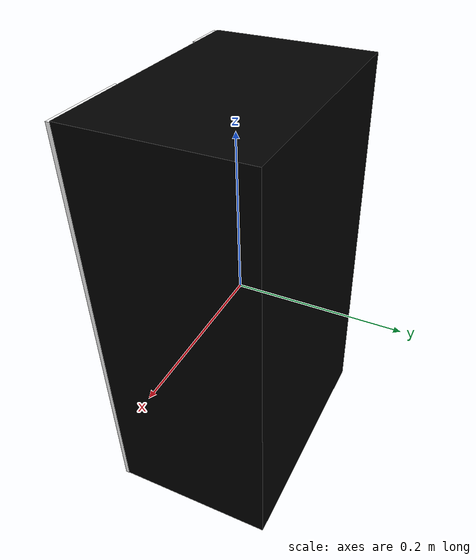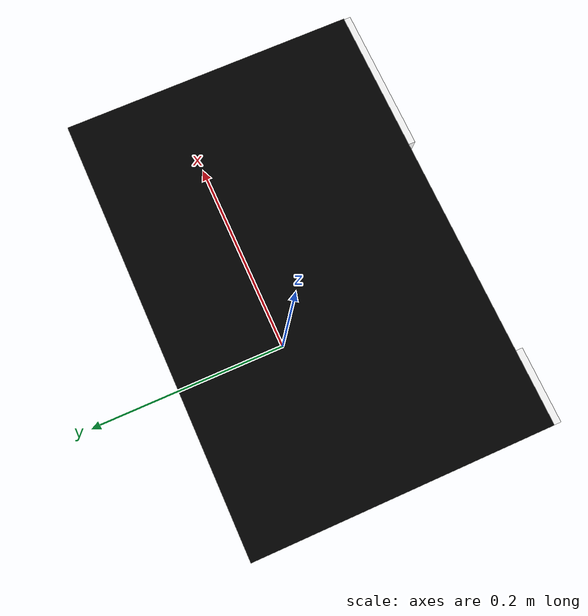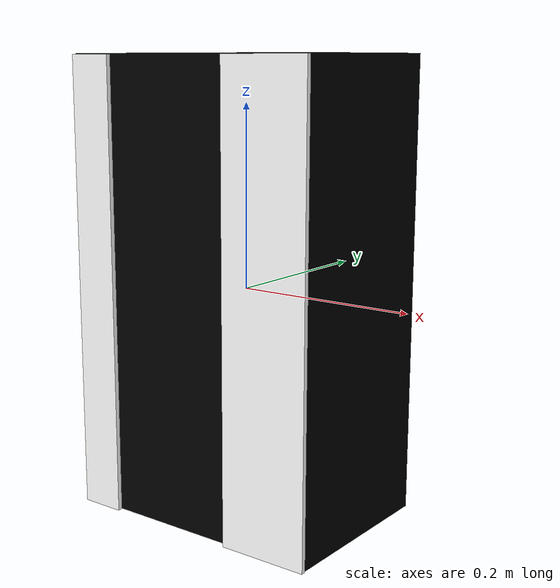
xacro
<?xml version="1.0" ?>
<robot name="marker" xmlns:xacro="http://ros.org/wiki/xacro">
  <xacro:include filename="$(find marker_description)/urdf/gazebo_properties.xacro"/>

  <link name="marker_base_link"/>

  <joint name="marker_base_joint" type="fixed">
    <parent link="marker_base_link"/>
    <child link="marker_link"/>
    <origin xyz="0.0 0.0 0.001" rpy="0 0 0"/>
  </joint>

  <link name="marker_link">
    <visual>
      <origin xyz="0 0 0" rpy="0 0 0"/>
      <geometry>
        <box size="0.30 0.20 0.5"/>
      </geometry>
      <material name="black"/>
    </visual>

    <collision>
      <origin xyz="0 0 0" rpy="0 0 0"/>
      <geometry>
        <box size="0.30 0.20 0.5"/>
      </geometry>
    </collision>

    <inertial>
      <origin xyz="0 0 0" />
      <mass value="2" />
      <inertia ixx="1.1175580e-05" ixy="-4.2369783e-11" ixz="-5.9381719e-09"
               iyy="1.1192413e-05" iyz="-1.4400107e-11"
               izz="2.0712558e-05" />
      </inertial>
  </link>

  <joint name="marker_ref1_joint" type="fixed">
    <parent link="marker_base_link"/>
    <child link="reflector1_link"/>
    <origin xyz="-0.125 -0.1025 0" rpy="0 0 0"/>
  </joint>

  <link name="reflector1_link">
    <visual>
      <origin xyz="0 0 0" rpy="0 0 0"/>
      <geometry>
       <box size="0.05 0.005 0.5"/>
      </geometry>
      <material name="white"/>
    </visual>

    <collision>
      <origin xyz="0 0 0" rpy="0 0 0"/>
      <geometry>
       <box size="0.05 0.005 0.5"/>
      </geometry>
    </collision>

    <inertial>
      <origin xyz="0 0 0" />
      <mass value="2.8498940e-02" />
      <inertia ixx="1.1175580e-05" ixy="-4.2369783e-11" ixz="-5.9381719e-09"
               iyy="1.1192413e-05" iyz="-1.4400107e-11"
               izz="2.0712558e-05" />
      </inertial>
  </link>

<joint name="marker_ref2_joint" type="fixed">
    <parent link="marker_base_link"/>
    <child link="reflector2_link"/>
    <origin xyz="0.10 -0.1025 0" rpy="0 0 0"/>
  </joint>

  <link name="reflector2_link">
    <visual>
      <origin xyz="0 0 0" rpy="0 0 0"/>
      <geometry>
       <box size="0.10 0.005 0.5"/>
      </geometry>
      <material name="white"/>
    </visual>

    <collision>
      <origin xyz="0 0 0" rpy="0 0 0"/>
      <geometry>
       <box size="0.10 0.005 0.5"/>
      </geometry>
    </collision>

    <inertial>
      <origin xyz="0 0 0" />
      <mass value="2.8498940e-02" />
      <inertia ixx="1.1175580e-05" ixy="-4.2369783e-11" ixz="-5.9381719e-09"
               iyy="1.1192413e-05" iyz="-1.4400107e-11"
               izz="2.0712558e-05" />
      </inertial>
  </link>

  <gazebo reference="marker_link">
    <material>Gazebo/Orange</material>
  </gazebo>

  <gazebo reference="reflector1_link">
     <material>Gazebo/White</material>
     <laserRetro>500</laserRetro>
  </gazebo>

  <gazebo reference="reflector2_link">
     <material>Gazebo/White</material>
     <laserRetro>500</laserRetro>
  </gazebo>
</robot>

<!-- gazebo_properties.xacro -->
<robot name="gazebo_properties" xmlns:xacro="http://ros.org/wiki/xacro">

  <!-- Init colour -->
  <material name="black">
      <color rgba="0.0 0.0 0.0 1.0"/>
  </material>

  <material name="dark">
    <color rgba="0.3 0.3 0.3 1.0"/>
  </material>
  <material name="light_black">
    <color rgba="0.4 0.4 0.4 1.0"/>
  </material>

  <material name="blue">
    <color rgba="0.0 0.0 0.8 1.0"/>
  </material>

  <material name="green">
    <color rgba="0.0 0.8 0.0 1.0"/>
  </material>

  <material name="grey">
    <color rgba="0.5 0.5 0.5 1.0"/>
  </material>

  <material name="orange">
    <color rgba="${255/255} ${108/255} ${10/255} 1.0"/>
  </material>

  <material name="brown">
    <color rgba="${222/255} ${207/255} ${195/255} 1.0"/>
  </material>

  <material name="red">
    <color rgba="0.8 0.0 0.0 1.0"/>
  </material>

  <material name="white">
    <color rgba="1.0 1.0 1.0 1.0"/>
  </material>
</robot>
